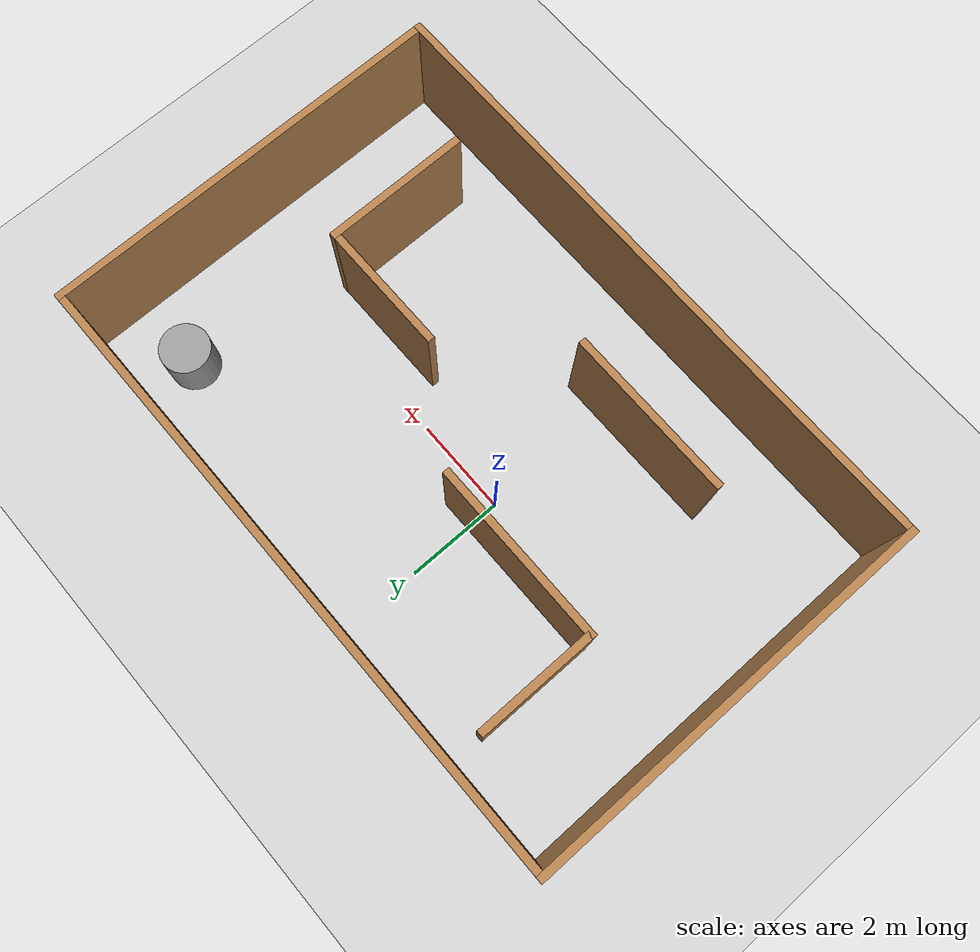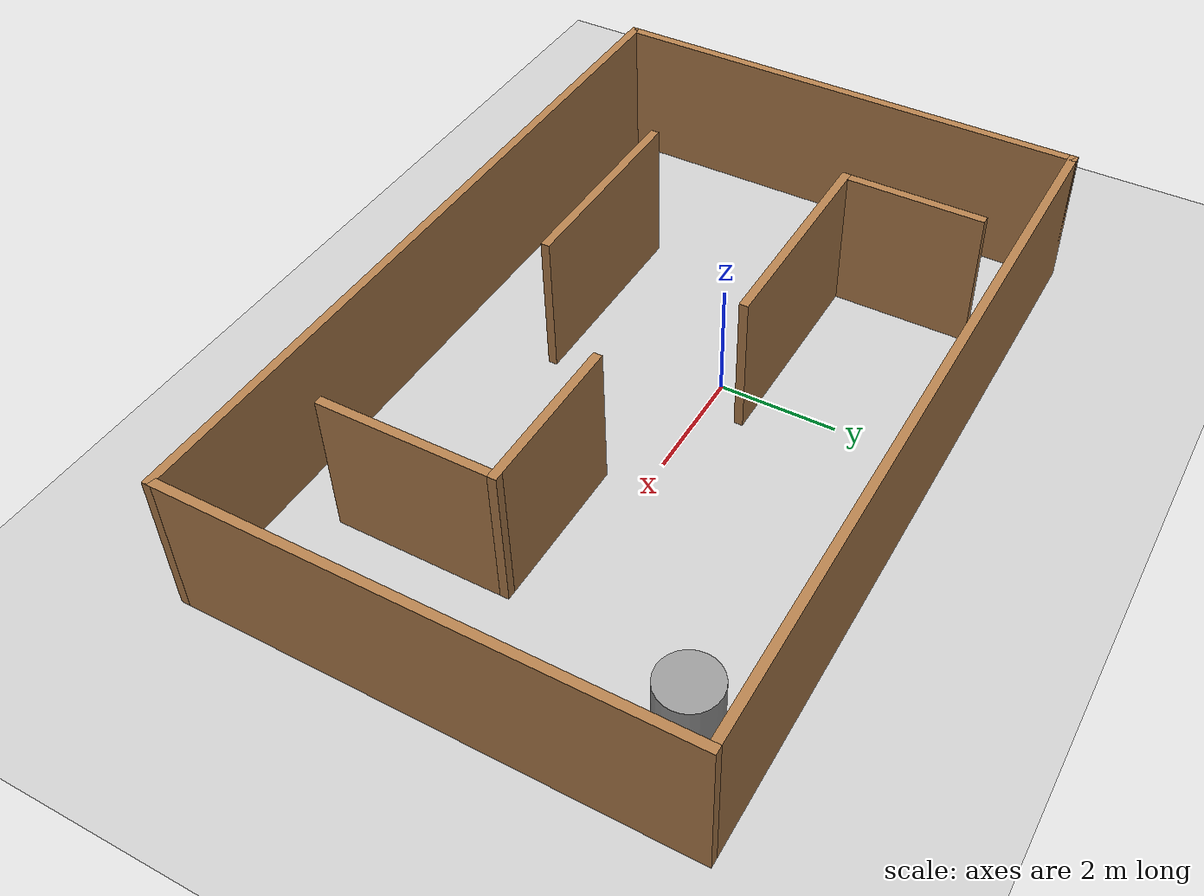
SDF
<sdf version="1.7">
 <world name="default">
  <physics type="ode">
   <max_step_size>0.001</max_step_size>
   <real_time_update_rate>1000</real_time_update_rate>
   <real_time_factor>1</real_time_factor>
  </physics>
  <light name="sun" type="directional">
   <pose>0 0 10 0 -0 0</pose>
   <diffuse>0.8 0.8 0.8 1</diffuse>
   <specular>0.2 0.2 0.2 1</specular>
   <attenuation>
    <range>1000</range>
    <constant>0.9</constant>
    <linear>0.01</linear>
    <quadratic>0.001</quadratic>
   </attenuation>
   <direction>-0.5 0.1 -0.9</direction>
   <spot><inner_angle>0</inner_angle><outer_angle>0</outer_angle><falloff>0</falloff></spot>
  </light>
  <model name="ground_plane">
   <static>1</static>
   <link name="link">
    <collision name="collision">
     <geometry><plane><normal>0 0 1</normal><size>100 100</size></plane></geometry>
     <surface>
      <contact><collide_bitmask>65535</collide_bitmask></contact>
      <friction><ode><mu>100</mu><mu2>50</mu2></ode></friction>
     </surface>
    </collision>
    <visual name="visual">
     <cast_shadows>0</cast_shadows>
     <geometry><plane><normal>0 0 1</normal><size>100 100</size></plane></geometry>
     <material>
      <script><uri>file://media/materials/scripts/gazebo.material</uri><name>Gazebo/Grey</name></script>
     </material>
    </visual>
   </link>
  </model>
  <gravity>0 0 -9.8</gravity>
  <magnetic_field>6e-06 2.3e-05 -4.2e-05</magnetic_field>
  <atmosphere type="adiabatic"/>
  <scene><ambient>0.4 0.4 0.4 1</ambient><background>0.7 0.7 0.7 1</background><shadows>1</shadows></scene>
  <spherical_coordinates>
   <surface_model>EARTH_WGS84</surface_model>
   <latitude_deg>0</latitude_deg>
   <longitude_deg>0</longitude_deg>
   <elevation>0</elevation>
   <heading_deg>0</heading_deg>
  </spherical_coordinates>
  <model name="walls">
   <pose>1.12026 -0.453595 0 0 -0 0</pose>
   <link name="Wall_13">
    <collision name="Wall_13_Collision">
     <geometry><box><size>13 0.15 2.5</size></box></geometry>
     <pose>0 0 1.25 0 -0 0</pose>
    </collision>
    <visual name="Wall_13_Visual">
     <pose>0 0 1.25 0 -0 0</pose>
     <geometry><box><size>13 0.15 2.5</size></box></geometry>
     <material>
      <script><uri>file://media/materials/scripts/gazebo.material</uri><name>Gazebo/Wood</name></script>
      <ambient>1 1 1 1</ambient>
     </material>
     <meta><layer>0</layer></meta>
    </visual>
    <pose>0 4.175 0 0 -0 0</pose>
   </link>
   <link name="Wall_18">
    <collision name="Wall_18_Collision">
     <geometry><box><size>8.5 0.15 2.5</size></box></geometry>
     <pose>0 0 1.25 0 -0 0</pose>
    </collision>
    <visual name="Wall_18_Visual">
     <pose>0 0 1.25 0 -0 0</pose>
     <geometry><box><size>8.5 0.15 2.5</size></box></geometry>
     <material>
      <script><uri>file://media/materials/scripts/gazebo.material</uri><name>Gazebo/Wood</name></script>
      <ambient>1 1 1 1</ambient>
     </material>
     <meta><layer>0</layer></meta>
    </visual>
    <pose>-6.425 -0 0 0 -0 -1.5708</pose>
   </link>
   <link name="Wall_19">
    <collision name="Wall_19_Collision">
     <geometry><box><size>13 0.15 2.5</size></box></geometry>
     <pose>0 0 1.25 0 -0 0</pose>
    </collision>
    <visual name="Wall_19_Visual">
     <pose>0 0 1.25 0 -0 0</pose>
     <geometry><box><size>13 0.15 2.5</size></box></geometry>
     <material>
      <script><uri>file://media/materials/scripts/gazebo.material</uri><name>Gazebo/Wood</name></script>
      <ambient>1 1 1 1</ambient>
     </material>
     <meta><layer>0</layer></meta>
    </visual>
    <pose>0 -4.175 0 0 -0 0</pose>
   </link>
   <link name="Wall_21">
    <collision name="Wall_21_Collision">
     <geometry><box><size>8.5 0.15 2.5</size></box></geometry>
     <pose>0 0 1.25 0 -0 0</pose>
    </collision>
    <visual name="Wall_21_Visual">
     <pose>0 0 1.25 0 -0 0</pose>
     <geometry><box><size>8.5 0.15 2.5</size></box></geometry>
     <material>
      <script><uri>file://media/materials/scripts/gazebo.material</uri><name>Gazebo/Wood</name></script>
      <ambient>1 1 1 1</ambient>
     </material>
     <meta><layer>0</layer></meta>
    </visual>
    <pose>6.425 -0 0 0 -0 -1.5708</pose>
   </link>
   <link name="Wall_23">
    <collision name="Wall_23_Collision">
     <geometry><box><size>3 0.15 2.5</size></box></geometry>
     <pose>0 0 1.25 0 -0 0</pose>
    </collision>
    <visual name="Wall_23_Visual">
     <pose>0 0 1.25 0 -0 0</pose>
     <geometry><box><size>3 0.15 2.5</size></box></geometry>
     <material>
      <script><uri>file://media/materials/scripts/gazebo.material</uri><name>Gazebo/Wood</name></script>
      <ambient>1 1 1 1</ambient>
     </material>
     <meta><layer>0</layer></meta>
    </visual>
    <pose>4.14643 -1.69584 0 0 -0 1.5708</pose>
   </link>
   <link name="Wall_24">
    <collision name="Wall_24_Collision">
     <geometry><box><size>2.75 0.15 2.5</size></box></geometry>
     <pose>0 0 1.25 0 -0 0</pose>
    </collision>
    <visual name="Wall_24_Visual">
     <pose>0 0 1.25 0 -0 0</pose>
     <geometry><box><size>2.75 0.15 2.5</size></box></geometry>
     <material>
      <script><uri>file://media/materials/scripts/gazebo.material</uri><name>Gazebo/Wood</name></script>
      <ambient>1 1 1 1</ambient>
     </material>
     <meta><layer>0</layer></meta>
    </visual>
    <pose>2.84643 -0.270838 0 0 -0 3.14159</pose>
   </link>
   <link name="Wall_26">
    <collision name="Wall_26_Collision">
     <geometry><box><size>2.5 0.15 2.5</size></box></geometry>
     <pose>0 0 1.25 0 -0 0</pose>
    </collision>
    <visual name="Wall_26_Visual">
     <pose>0 0 1.25 0 -0 0</pose>
     <geometry><box><size>2.5 0.15 2.5</size></box></geometry>
     <material>
      <script><uri>file://media/materials/scripts/gazebo.material</uri><name>Gazebo/Wood</name></script>
      <ambient>1 1 1 1</ambient>
     </material>
     <meta><layer>0</layer></meta>
    </visual>
    <pose>-4.15576 2.24741 0 0 -0 -1.5708</pose>
   </link>
   <link name="Wall_27">
    <collision name="Wall_27_Collision">
     <geometry><box><size>3.75 0.15 2.5</size></box></geometry>
     <pose>0 0 1.25 0 -0 0</pose>
    </collision>
    <visual name="Wall_27_Visual">
     <pose>0 0 1.25 0 -0 0</pose>
     <geometry><box><size>3.75 0.15 2.5</size></box></geometry>
     <material>
      <script><uri>file://media/materials/scripts/gazebo.material</uri><name>Gazebo/Wood</name></script>
      <ambient>1 1 1 1</ambient>
     </material>
     <meta><layer>0</layer></meta>
    </visual>
    <pose>-2.35576 1.07241 0 0 -0 0</pose>
   </link>
   <link name="Wall_29">
    <collision name="Wall_29_Collision">
     <geometry><box><size>3.5 0.15 2.5</size></box></geometry>
     <pose>0 0 1.25 0 -0 0</pose>
    </collision>
    <visual name="Wall_29_Visual">
     <pose>0 0 1.25 0 -0 0</pose>
     <geometry><box><size>3.5 0.15 2.5</size></box></geometry>
     <material>
      <script><uri>file://media/materials/scripts/gazebo.material</uri><name>Gazebo/Wood</name></script>
      <ambient>1 1 1 1</ambient>
     </material>
     <meta><layer>0</layer></meta>
    </visual>
    <pose>-2.01315 -2.25844 0 0 -0 0</pose>
   </link>
   <static>1</static>
  </model>
  <model name="unit_cylinder">
   <pose>5.95703 2.58077 0.499997 3e-06 4e-06 -0</pose>
   <link name="link">
    <inertial>
     <mass>1</mass>
     <inertia><ixx>0.145833</ixx><ixy>0</ixy><ixz>0</ixz><iyy>0.145833</iyy><iyz>0</iyz><izz>0.125</izz></inertia>
    </inertial>
    <collision name="collision">
     <geometry><cylinder><radius>0.5</radius><length>1</length></cylinder></geometry>
    </collision>
    <visual name="visual">
     <geometry><cylinder><radius>0.5</radius><length>1</length></cylinder></geometry>
     <material>
      <script><name>Gazebo/Grey</name><uri>file://media/materials/scripts/gazebo.material</uri></script>
     </material>
    </visual>
   </link>
  </model>
 </world>
</sdf>
